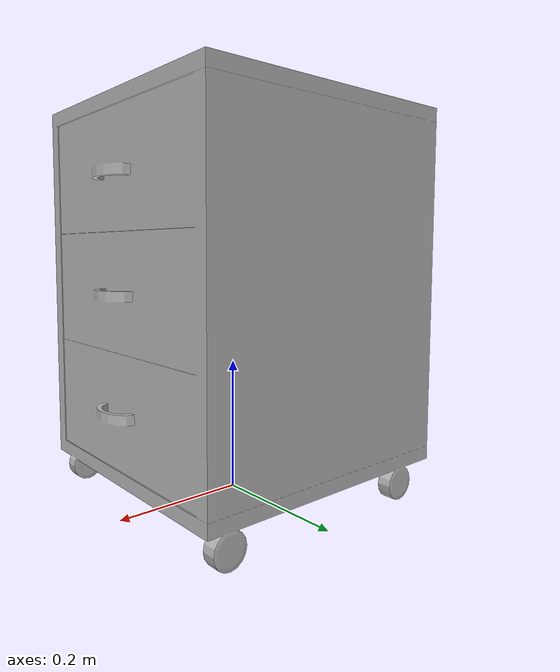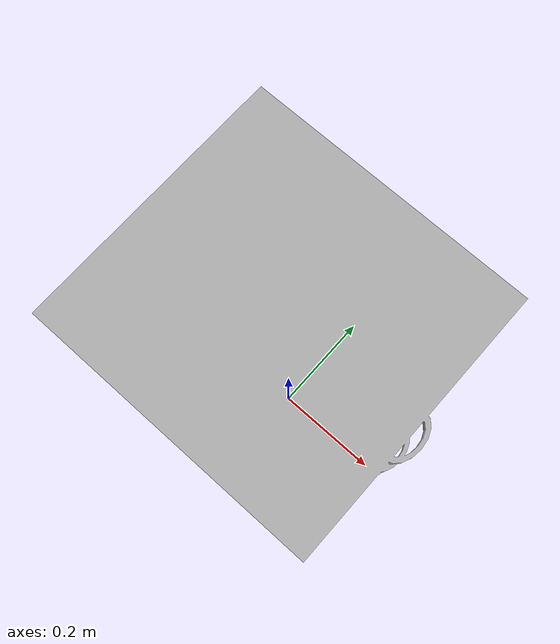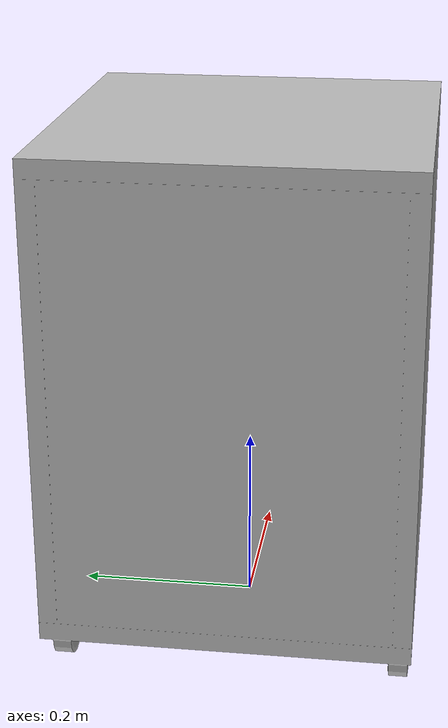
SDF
<?xml version='1.0'?>
<sdf version='1.4'>
  <model name='404'>
    <pose>0 0 0 0 0 0</pose>
    <static>true</static>
    <link name='link'>
      <collision name='collision'>
        <pose>0 0 0 0 0 0</pose>
        <geometry>
          <box>
            <size>0.449743 0.399884 2</size>
          </box>
        </geometry>
      </collision>
      <visual name='visual'>
        <pose>0 0 0 0 0 0</pose>
        <geometry>
          <mesh><uri>model://404/404.dae</uri></mesh>
        </geometry>
      </visual>
    </link>
  </model>
</sdf>
